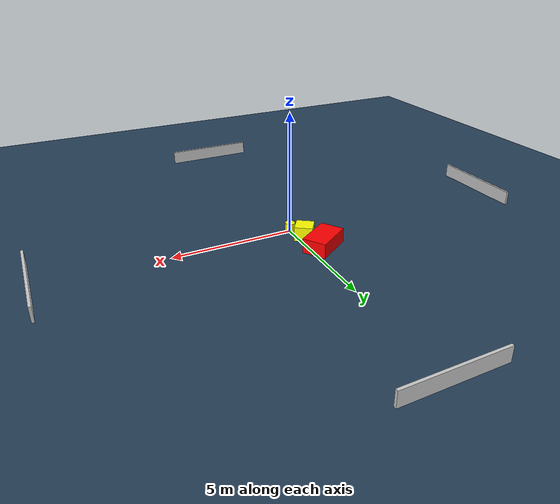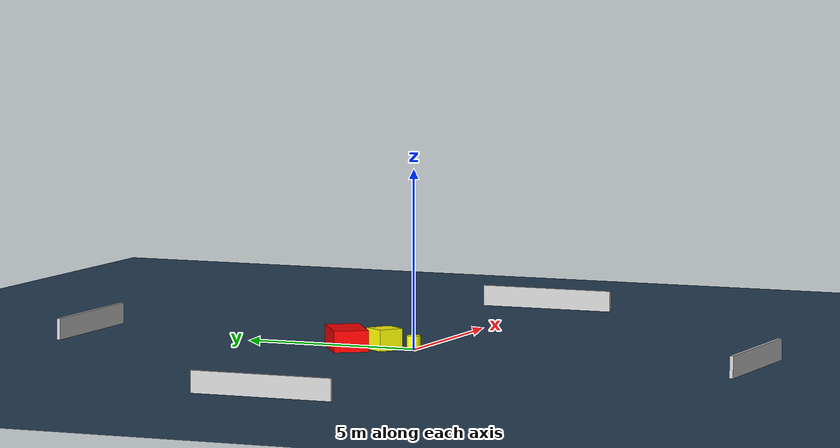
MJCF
<?xml version="1.0" ?>
<mujoco model="generated_environment">
  <option timestep="0.01" integrator="RK4" cone="elliptic"/>
  <default>
    <geom density="1"/>
  </default>
  <asset>
    <texture builtin="gradient" height="3072" name="skybox" rgb1="0.3 0.5 0.7" rgb2="0 0 0" type="skybox" width="512"/>
    <texture builtin="checker" height="300" name="groundplane" rgb1="0.2 0.3 0.4" rgb2="0.1 0.2 0.3" type="2d" width="300"/>
    <material name="groundplane" reflectance="0.2" texrepeat="5 5" texture="groundplane"/>
  </asset>
  <worldbody>
    <light dir="0 0 -1" directional="true" pos="0 0 1.5"/>
    <geom condim="3" friction="0.5 0.005 0.001" material="groundplane" name="floor" pos="0 0 0" size="0 0 0.05" type="plane"/>
    <body name="walls">
      <geom name="wall_1" condim="4" pos="-10.0 0.0 0.3" rgba="0.800000011920929 0.800000011920929 0.800000011920929 1.0" size="0.05 2.0 0.3" type="box"/>
      <geom name="wall_2" condim="4" pos="10.0 0.0 0.3" rgba="0.800000011920929 0.800000011920929 0.800000011920929 1.0" size="0.05 2.0 0.3" type="box"/>
      <geom name="wall_3" condim="4" pos="0.0 -10.0 0.3" rgba="0.800000011920929 0.800000011920929 0.800000011920929 1.0" size="2.0 0.05 0.3" type="box"/>
      <geom name="wall_4" condim="4" pos="0.0 10.0 0.3" rgba="0.800000011920929 0.800000011920929 0.800000011920929 1.0" size="2.0 0.05 0.3" type="box"/>
    </body>
    <body name="robot">
      <joint name="joint_x" type="slide" pos="0 0 0" axis="1 0 0"/>
      <joint name="joint_y" type="slide" pos="0 0 0" axis="0 1 0"/>
      <geom name="robot" type="cylinder" pos="0.0 0.0 0.2" size="0.2 0.2 0.0" mass="5.0" friction="1.0 0.005 0.0001" condim="4" rgba="1.0 1.0 0.0 1.0"/>
    </body>
    <body name="obstacle_1_movable">
      <geom name="obstacle_1_movable" condim="4" pos="-0.26350614407022016 0.763216334990106 0.3" euler="0 0 325.3046183887314" friction="0.0 0.005 0.001" rgba="1.0 1.0 0.0 1.0" size="0.3638852628545719 0.34492975585335706 0.3" type="box" mass="0.1"/>
      <joint type="free"/>
    </body>
    <body name="obstacle_2_static">
      <geom name="obstacle_2_static" condim="4" pos="-0.5542189461485802 1.7859265060104477 0.3" euler="0 0 303.2456553230546" friction="0.0 0.005 0.001" rgba="1.0 0.0 0.0 1.0" size="0.4844022942447783 0.7874128117678867 0.3" type="box"/>
    </body>
  </worldbody>
  <actuator>
    <motor name="actuator_x" joint="joint_x" gear="1" ctrlrange="-1 1"/>
    <motor name="actuator_y" joint="joint_y" gear="1" ctrlrange="-1 1"/>
  </actuator>
</mujoco>
